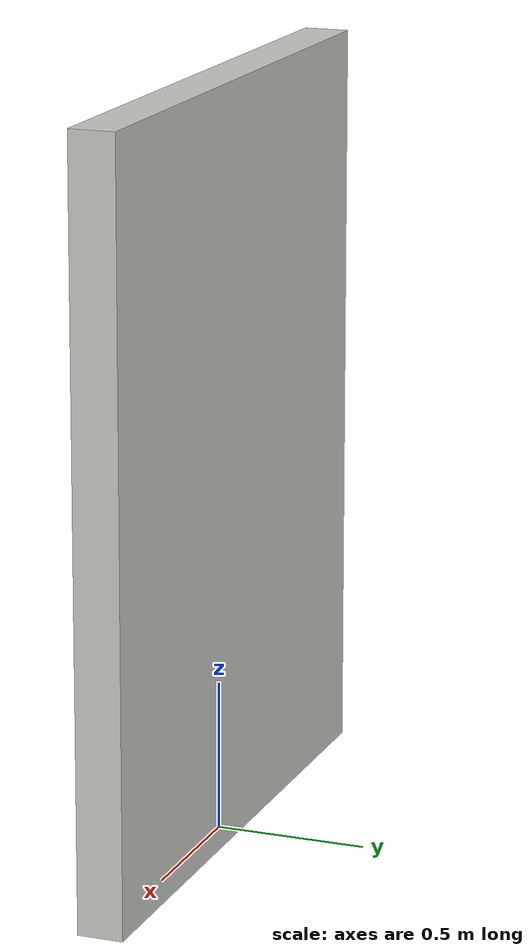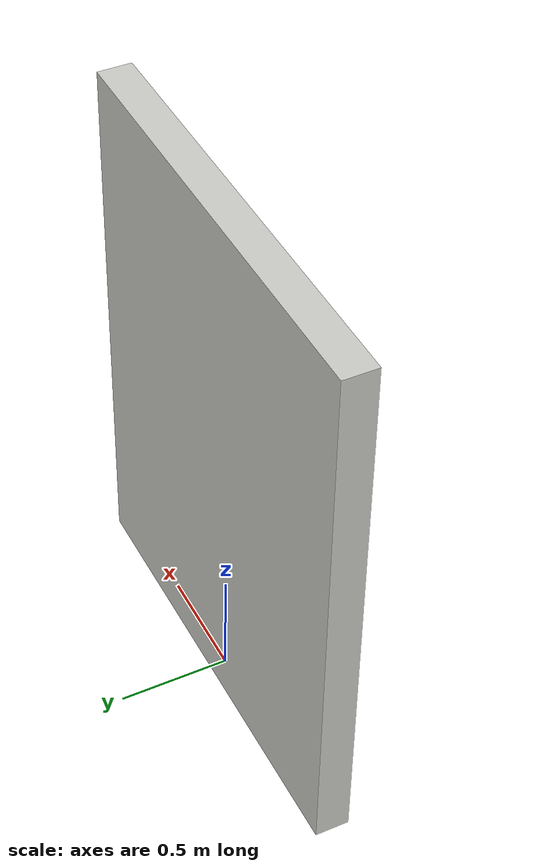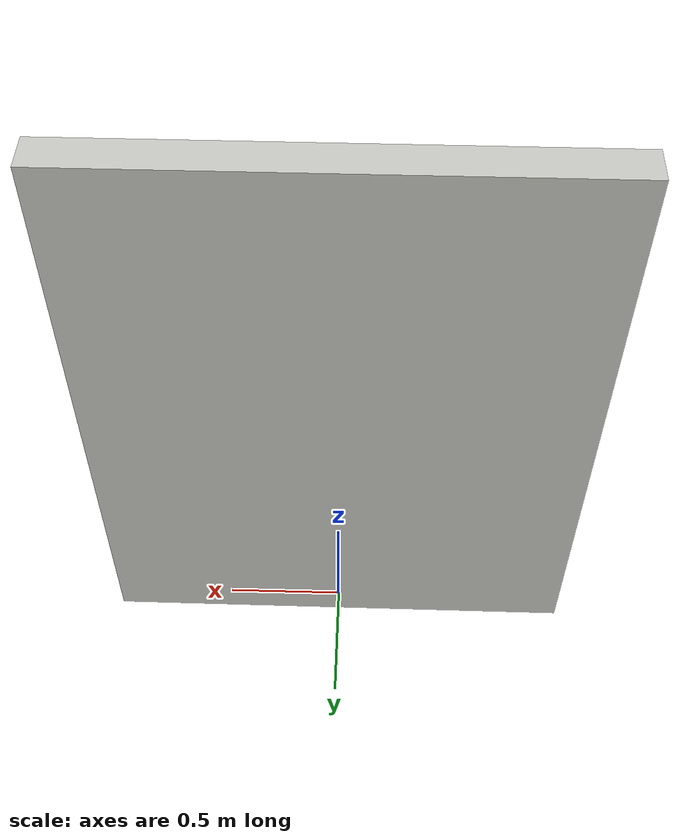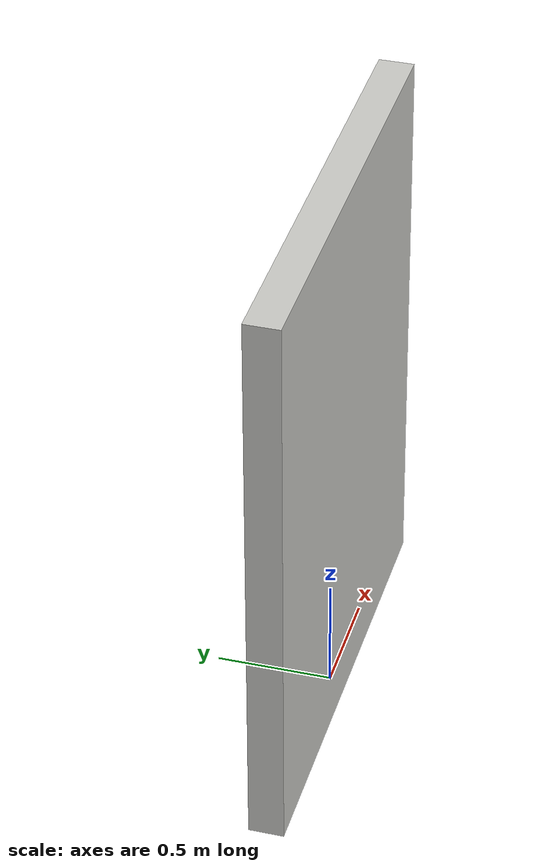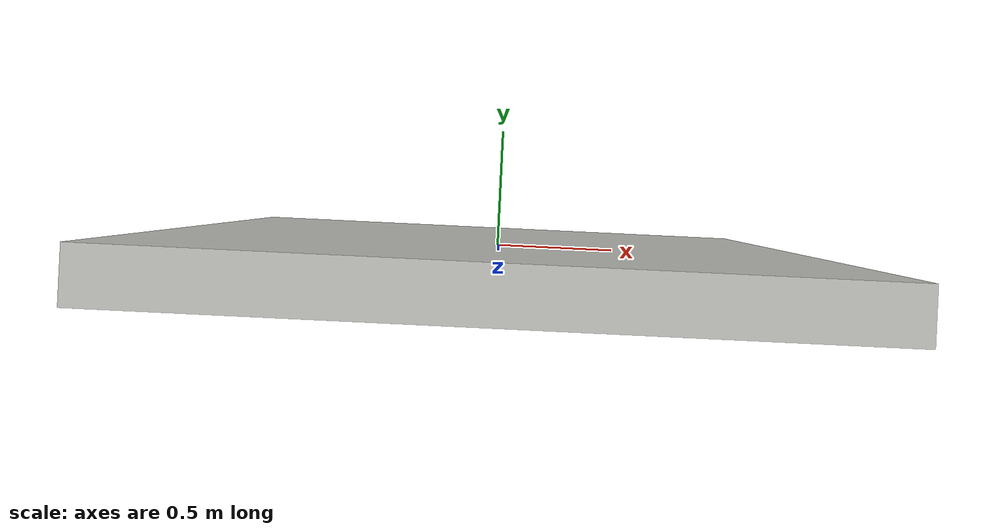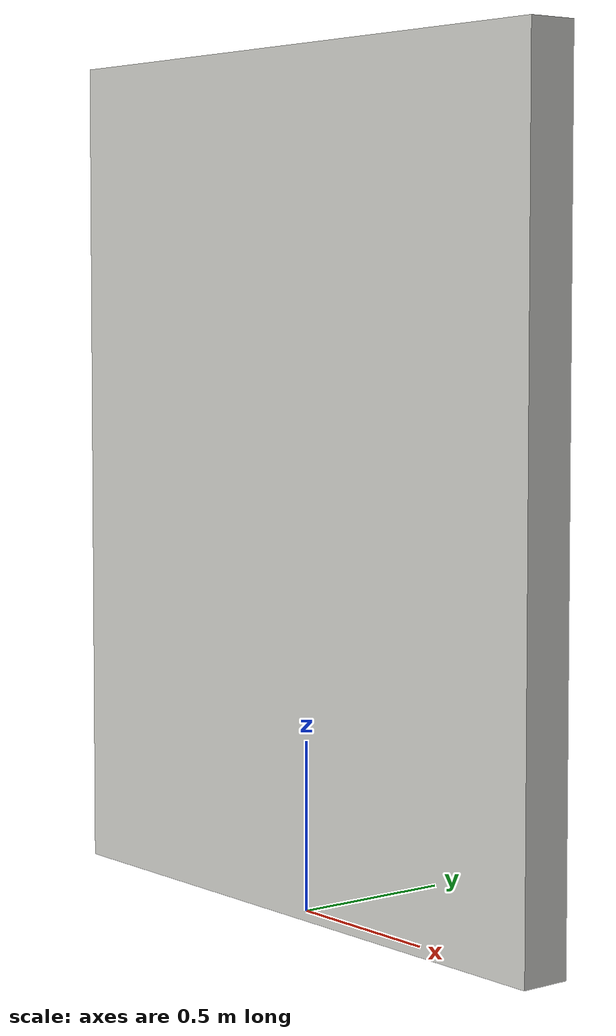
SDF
<?xml version='1.0'?>
<sdf version='1.6'>
  <model name='half_wall'>
    <link name='Wall_0'>
      <collision name='Wall_0_Collision'>
        <pose>0 0 1.25 0 -0 0</pose>
        <geometry>
          <box>
            <size>2.0 0.15 2.5</size>
          </box>
        </geometry>
      </collision>
      <visual name='Wall_0_Visual'>
        <pose>0 0 1.25 0 -0 0</pose>
        <geometry>
          <box>
            <size>2.0 0.15 2.5</size>
          </box>
        </geometry>
        <material>
          <script>
            <uri>file://media/materials/scripts/gazebo.material</uri>
            <name>Gazebo/CeilingTiled</name>
          </script>
          <ambient>1 1 1 1</ambient>
        </material>
      </visual>
    </link>
    <static>1</static>
  </model>
</sdf>
